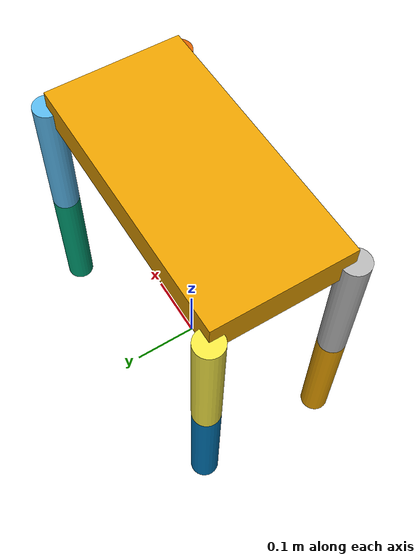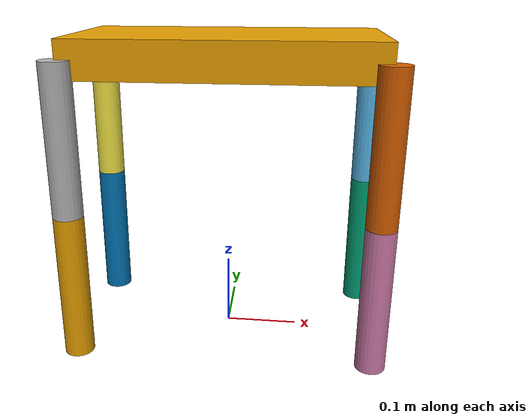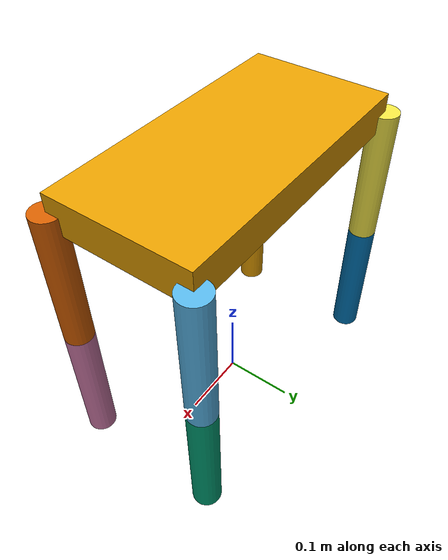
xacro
<?xml version="1.0"?>
<robot name="kid" xmlns:xacro="http://www.ros.org/wiki/xacro">
        <!--Include xacro:macro -->
        <xacro:include filename="$(find mtn_kid)/urdf/links_joints.xacro"/>

        <!--Constants of the robot-->
        <xacro:property name="PI" value="3.1415926535897931"/>
        <xacro:property name="mass" value="1" /> <!-- mass of main box__approx for now -->
        <xacro:property name="length" value="0.3" /> <!-- length and width  dimensions of box -->
        <xacro:property name="width" value="0.15" /> <!-- length and width  dimensions of box -->
        <xacro:property name="thickness" value="0.05" /> <!-- length and width  dimensions of box -->
        <xacro:property name="height1" value="0.02" /> <!-- Link 1 -->
        <xacro:property name="height2" value="0.095" /> <!-- Link 2 -->
        <xacro:property name="height3" value="0.09" /> <!-- Link 3 -->
        <!--base_link -->
        <m_link_box name="base_link" origin_xyz="0 0 0.4" origin_rpy="0 0 0" size="0.4 0.2 0.05"
                        mass="10" ixx="${10*((0.2*0.2)+(0.05*0.05))/12}" iyy="${10*((0.4*0.4)+(0.05*0.05))/12}" izz="${10*((0.2*0.2)+(0.4*0.4))/12}"/>
        <!--base_link_leg1 joints and 2 leg links haven't yet added feet -->
        <m_joint name="base_link_leg11" type="revolute" axis_xyz="0 1 0"
                origin_rpy="0 0 0" origin_xyz="0.2 0.1 0.4"
                parent="base_link" child="leg11"/>
        <m_link_cylinder name="leg11" origin_xyz="0 0 -0.1" origin_rpy="0 0 0 "
                        radius="0.02" length="0.2"
                        mass="1" ixx="${1*(0.2*0.2)/3}" iyy="0" izz="${1*(0.2*0.2)/3}"/>
        <m_joint name="leg11_leg12" type="revolute" axis_xyz="0 1 0"
                origin_rpy="0 0 0" origin_xyz="0 0 -0.2"
                parent="leg11" child="leg12"/>
        <m_link_cylinder name="leg12" origin_xyz="0 0 -0.1" origin_rpy="0 0 0 "
                        radius="0.02" length="0.2"
                        mass="1" ixx="${1*(0.2*0.2)/3}" iyy="0" izz="${1*(0.2*0.2)/3}"/>

        <!--base_link_leg2 joints and 2 leg links haven't yet added feet -->
        <m_joint name="base_link_leg21" type="revolute" axis_xyz="0 1 0"
                origin_rpy="0 0 0" origin_xyz="-0.2 0.1 0.4"
                parent="base_link" child="leg21"/>
        <m_link_cylinder name="leg21" origin_xyz="0 0 -0.1" origin_rpy="0 0 0 "
                        radius="0.02" length="0.2"
                        mass="1" ixx="${1*(0.2*0.2)/3}" iyy="0" izz="${1*(0.2*0.2)/3}"/>
        <m_joint name="leg21_leg22" type="revolute" axis_xyz="0 1 0"
                origin_rpy="0 0 0" origin_xyz="0 0 -0.2"
                parent="leg21" child="leg22"/>
        <m_link_cylinder name="leg22" origin_xyz="0 0 -0.1" origin_rpy="0 0 0 "
                        radius="0.02" length="0.2"
                        mass="1" ixx="${1*(0.2*0.2)/3}" iyy="0" izz="${1*(0.2*0.2)/3}"/>

        <!--base_link_leg3 joints and 2 leg links haven't yet added feet -->
        <m_joint name="base_link_leg31" type="revolute" axis_xyz="0 1 0"
                origin_rpy="0 0 0" origin_xyz="0.2 -0.1 0.4"
                parent="base_link" child="leg31"/>
        <m_link_cylinder name="leg31" origin_xyz="0 0 -0.1" origin_rpy="0 0 0 "
                        radius="0.02" length="0.2"
                        mass="1" ixx="${1*(0.2*0.2)/3}" iyy="0" izz="${1*(0.2*0.2)/3}"/>
        <m_joint name="leg31_leg32" type="revolute" axis_xyz="0 1 0"
                origin_rpy="0 0 0" origin_xyz="0 0 -0.2"
                parent="leg31" child="leg32"/>
        <m_link_cylinder name="leg32" origin_xyz="0 0 -0.1" origin_rpy="0 0 0 "
                        radius="0.02" length="0.2"
                        mass="1" ixx="${1*(0.2*0.2)/3}" iyy="0" izz="${1*(0.2*0.2)/3}"/>

        <!--base_link_leg4 joints and 2 leg links haven't yet added feet -->
        <m_joint name="base_link_leg41" type="revolute" axis_xyz="0 1 0"
                origin_rpy="0 0 0" origin_xyz="-0.2 -0.1 0.4"
                parent="base_link" child="leg41"/>
        <m_link_cylinder name="leg41" origin_xyz="0 0 -0.1" origin_rpy="0 0 0 "
                        radius="0.02" length="0.2"
                        mass="1" ixx="${1*(0.2*0.2)/3}" iyy="0" izz="${1*(0.2*0.2)/3}"/>
        <m_joint name="leg41_leg42" type="revolute" axis_xyz="0 1 0"
                origin_rpy="0 0 0" origin_xyz="0 0 -0.2"
                parent="leg41" child="leg42"/>
        <m_link_cylinder name="leg42" origin_xyz="0 0 -0.1" origin_rpy="0 0 0 "
                        radius="0.02" length="0.2"
                        mass="1" ixx="${1*(0.2*0.2)/3}" iyy="0" izz="${1*(0.2*0.2)/3}"/>

</robot>

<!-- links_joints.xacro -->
<robot xmlns:xacro="http://www.ros.org/wiki/xacro">

  <xacro:macro name="m_joint" params="name type axis_xyz origin_rpy origin_xyz parent child">
    <joint name="${name}" type="${type}">
      <axis xyz="${axis_xyz}" />
      <limit effort="1000.0" lower="-1.57" upper="1.57" velocity="0.5" />
      <origin rpy="${origin_rpy}" xyz="${origin_xyz}" />
      <parent link="${parent}" />
      <child link="${child}" />
    </joint>
    <transmission name="trans_${name}">
        <type>transmission_interface/SimpleTransmission</type>
        <joint name="${name}">
            <hardwareInterface>PositionJointInterface</hardwareInterface>
        </joint>
        <actuator name="motor_${name}">
            <mechanicalReduction>1</mechanicalReduction>
        </actuator>
    </transmission>
  </xacro:macro>

  <xacro:macro name="m_link_cylinder" params="name origin_xyz origin_rpy radius length mass ixx iyy izz">
    <link name="${name}">
      <inertial>
        <mass value="${mass}" />
        <origin rpy="${origin_rpy}" xyz="${origin_xyz}" />
        <inertia ixx="${ixx}" ixy="0" ixz="0" iyy="${iyy}" iyz="0" izz="${izz}" />
      </inertial>
        <visual>
            <origin rpy="${origin_rpy}" xyz="${origin_xyz}" />
            <geometry>
                <cylinder radius="${radius}" length="${length}" />
            </geometry>
        </visual>
        <collision>
            <origin rpy="${origin_rpy}" xyz="${origin_xyz}" />
            <geometry>
                <cylinder radius="${radius}" length="${length}" />
            </geometry>
        </collision>
    </link>
  </xacro:macro>

  <xacro:macro name="m_link_box" params="name origin_xyz origin_rpy size mass ixx iyy izz">
    <link name="${name}">
        <inertial>
            <mass value="${mass}" />
            <origin rpy="${origin_rpy}" xyz="${origin_xyz}" />
            <inertia ixx="${ixx}" ixy="0" ixz="0" iyy="${iyy}" iyz="0" izz="${izz}" />
        </inertial>
        <visual>
            <origin rpy="${origin_rpy}" xyz="${origin_xyz}" />
            <geometry>
                <box size="${size}" />
            </geometry>
        </visual>
        <collision>
            <origin rpy="${origin_rpy}" xyz="${origin_xyz}" />
            <geometry>
                <box size="${size}" />
            </geometry>
        </collision>
    </link>
  </xacro:macro>

</robot>
